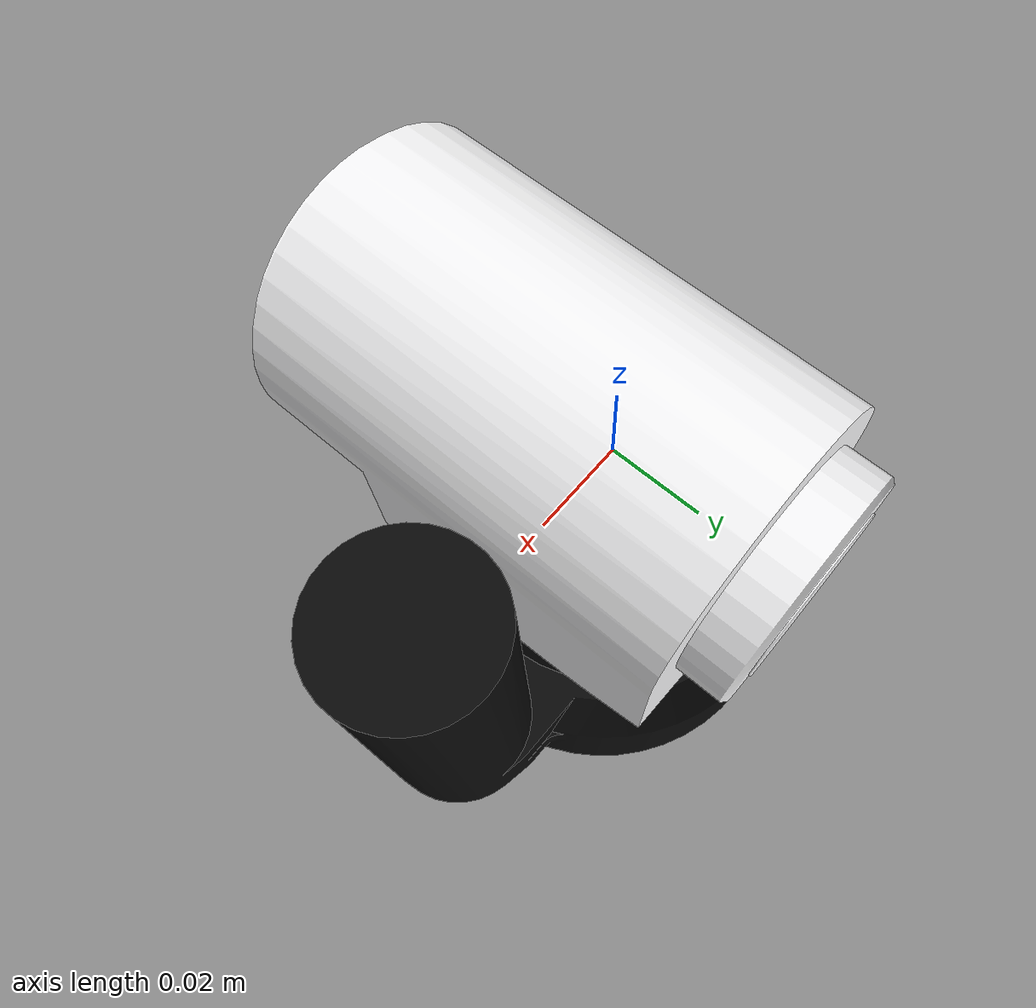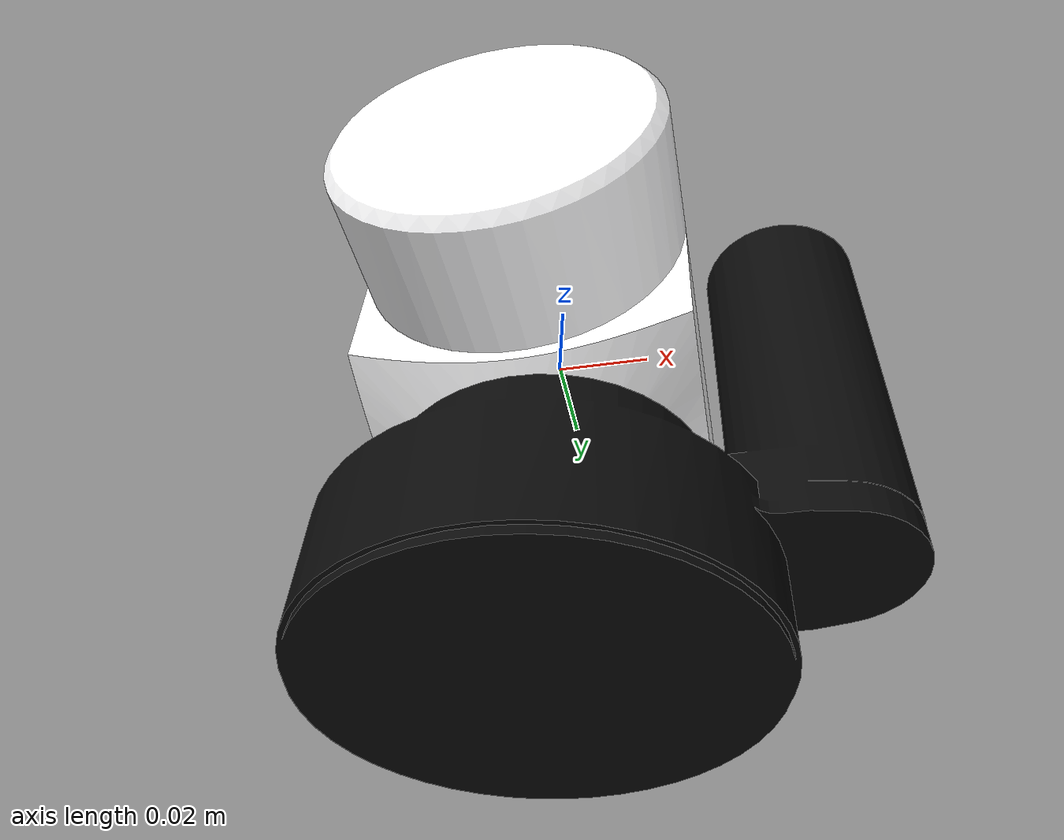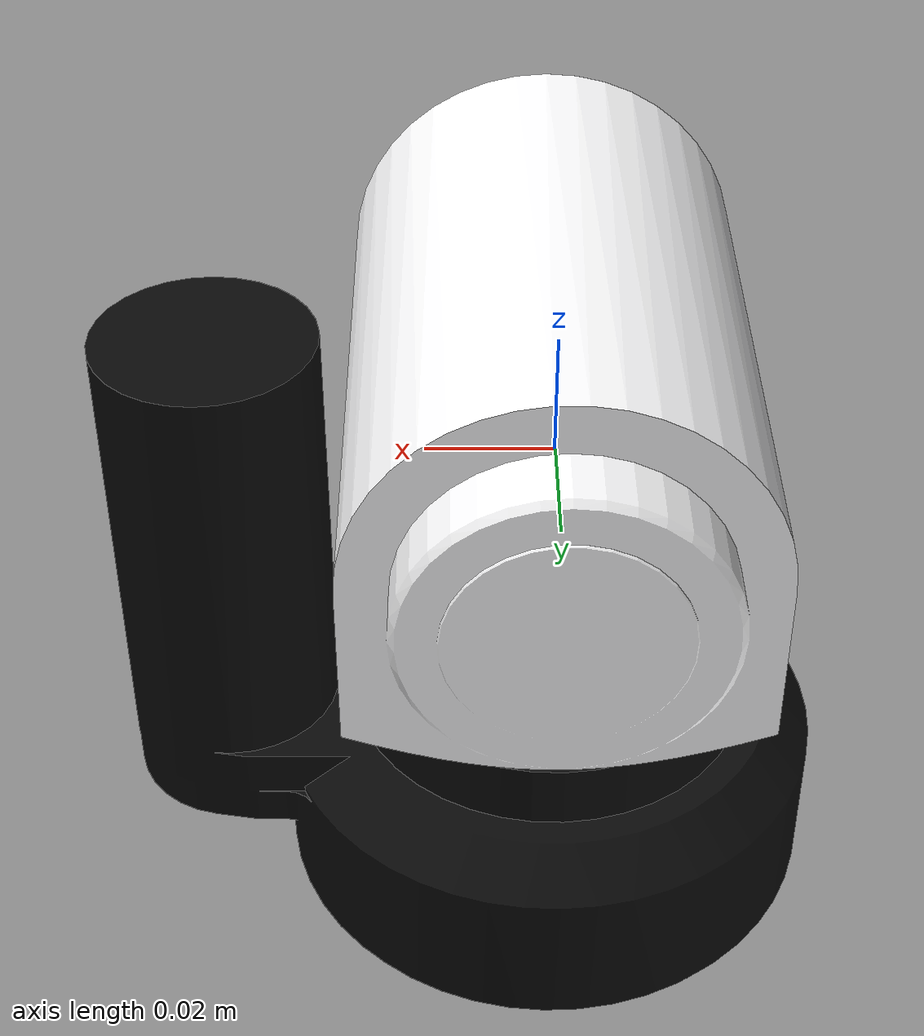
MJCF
<mujoco model="LINK_19">
  <default>
    <default class="visual">
      <geom group="2" type="mesh" contype="0" conaffinity="0"/>
    </default>
    <default class="collision">
      <geom group="3" type="mesh"/>
    </default>
  </default>
  <asset>
    <material name="254,254,255" specular="0.9973853333333333" shininess="1.0" rgba="0.996078 0.996078 1.000000 1.000000"/>
    <material name="10,10,10" specular="0.039216" shininess="1.0" rgba="0.039216 0.039216 0.039216 1.000000"/>
    <mesh file="LINK_19_0.obj"/>
    <mesh file="LINK_19_1.obj"/>
    <mesh file="LINK_19_collision_0.obj"/>
    <mesh file="LINK_19_collision_1.obj"/>
    <mesh file="LINK_19_collision_2.obj"/>
    <mesh file="LINK_19_collision_3.obj"/>
    <mesh file="LINK_19_collision_4.obj"/>
    <mesh file="LINK_19_collision_5.obj"/>
    <mesh file="LINK_19_collision_6.obj"/>
    <mesh file="LINK_19_collision_7.obj"/>
    <mesh file="LINK_19_collision_8.obj"/>
    <mesh file="LINK_19_collision_9.obj"/>
  </asset>
  <worldbody>
    <body name="LINK_19">
      <geom mesh="LINK_19_0" material="10,10,10" class="visual"/>
      <geom mesh="LINK_19_1" material="254,254,255" class="visual"/>
      <geom mesh="LINK_19_collision_0" rgba="0.07650353354937911 0.47142421669559187 0.4550304918673618 1" class="collision"/>
      <geom mesh="LINK_19_collision_1" rgba="0.03878151231931426 0.39643760571366327 0.9049854738029187 1" class="collision"/>
      <geom mesh="LINK_19_collision_2" rgba="0.09013558623402462 0.7235199737121317 0.6380029350189327 1" class="collision"/>
      <geom mesh="LINK_19_collision_3" rgba="0.2562487206743064 0.47540191552298816 0.8357245392457836 1" class="collision"/>
      <geom mesh="LINK_19_collision_4" rgba="0.15044151130589223 0.5413144472895918 0.688263667707038 1" class="collision"/>
      <geom mesh="LINK_19_collision_5" rgba="0.3955366165943973 0.4489127712488753 0.920111990219729 1" class="collision"/>
      <geom mesh="LINK_19_collision_6" rgba="0.22845973959302612 0.7070553006350665 0.767425030141423 1" class="collision"/>
      <geom mesh="LINK_19_collision_7" rgba="0.5485838266169976 0.09202464755796325 0.8301767642528531 1" class="collision"/>
      <geom mesh="LINK_19_collision_8" rgba="0.9372759096336178 0.4614202289595021 0.7284641244801298 1" class="collision"/>
      <geom mesh="LINK_19_collision_9" rgba="0.29648138744930463 0.6265639902604276 0.4777176873615072 1" class="collision"/>
    </body>
  </worldbody>
</mujoco>
